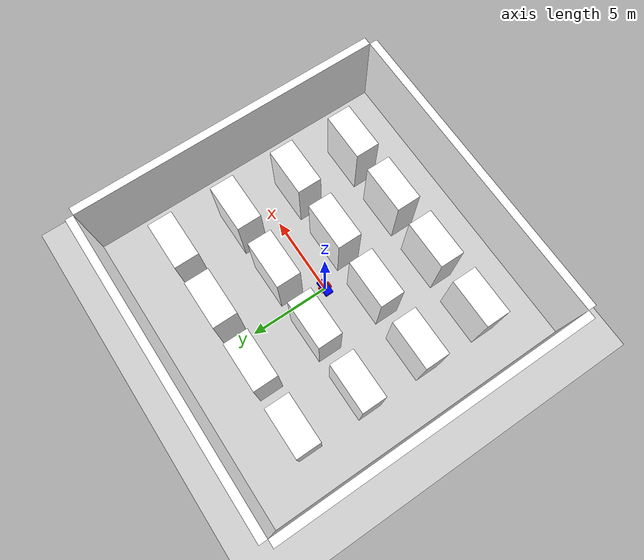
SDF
<?xml version="1.0" ?>
<sdf version="1.9">
    <world name="warehouse">
        <physics name='1ms' type='ignored'>
        <max_step_size>0.001</max_step_size>
        <real_time_factor>1</real_time_factor>
        <real_time_update_rate>700</real_time_update_rate>
        </physics>
    <plugin
      filename="ignition-gazebo-physics-system"
      name="ignition::gazebo::systems::Physics">
    </plugin>
    <plugin
      filename="ignition-gazebo-sensors-system"
      name="ignition::gazebo::systems::Sensors">
      <render_engine>ogre2</render_engine>
    </plugin>
    <plugin
      filename="ignition-gazebo-scene-broadcaster-system"
      name="ignition::gazebo::systems::SceneBroadcaster">
    </plugin>
    <plugin
      filename="ignition-gazebo-user-commands-system"
      name="ignition::gazebo::systems::UserCommands">
    </plugin>
    <plugin filename="libignition-gazebo-imu-system.so" name="ignition::gazebo::systems::Imu">
    </plugin>
    <plugin
      filename="BasicSystem"
      name="ros_gazebo::BasicSystem"> <!--Must change directories-->
    </plugin>
    <plugin
      filename="FullSystem"
      name="ros_gazebo::FullSystem">
    </plugin>

    <gravity>0 0 -9.8</gravity>
    <magnetic_field>6e-06 2.3e-05 -4.2e-05</magnetic_field>
    <atmosphere type='adiabatic'/>
    <scene>
      <ambient>0.4 0.4 0.4 1</ambient>
      <background>0.7 0.7 0.7 1</background>
      <shadows>true</shadows>
    </scene>

    <light name="sun" type="directional">
      <cast_shadows>true</cast_shadows>
      <pose>0 0 10 0 0 0</pose>
      <diffuse>0.8 0.8 0.8 1</diffuse>
      <specular>0.2 0.2 0.2 1</specular>
      <attenuation>
        <range>1000</range>
        <constant>0.9</constant>
        <linear>0.01</linear>
        <quadratic>0.001</quadratic>
      </attenuation>
      <direction>-0.5 0.1 -0.9</direction>
    </light>

    <model name='ground_plane'>
      <static>true</static>
      <link name='link'>
        <collision name='collision'>
          <geometry>
            <plane>
              <normal>0 0 1</normal>
              <size>100 100</size>
            </plane>
          </geometry>
          <surface>
            <friction>
              <ode/>
            </friction>
            <bounce/>
            <contact/>
          </surface>
        </collision>
        <visual name='visual'>
          <geometry>
            <plane>
              <normal>0 0 1</normal>
              <size>100 100</size>
            </plane>
          </geometry>
          <material>
            <ambient>0.8 0.8 0.8 1</ambient>
            <diffuse>0.8 0.8 0.8 1</diffuse>
            <specular>0.8 0.8 0.8 1</specular>
          </material>
        </visual>
        <pose>0 0 0 0 -0 0</pose>
        <inertial>
          <pose>0 0 0 0 -0 0</pose>
          <mass>1</mass>
          <inertia>
            <ixx>1</ixx>
            <ixy>0</ixy>
            <ixz>0</ixz>
            <iyy>1</iyy>
            <iyz>0</iyz>
            <izz>1</izz>
          </inertia>
        </inertial>
        <enable_wind>false</enable_wind>
      </link>
      <pose>-6 -2 0 0 -0 0</pose>
      <self_collide>false</self_collide>
    </model>
    <model name='shelf1'>
      <pose>-2 2 2 0 -0 0</pose>
      <link name='box_link'>
        <inertial>
          <inertia>
            <ixx>1.5208299999999999</ixx>
            <ixy>0</ixy>
            <ixz>0</ixz>
            <iyy>2.0833300000000001</iyy>
            <iyz>0</iyz>
            <izz>0.9375</izz>
          </inertia>
          <mass>1</mass>
          <pose>0 0 0 0 -0 0</pose>
        </inertial>
        <collision name='box_collision'>
          <geometry>
            <box>
              <size>3 1.5 4</size>
            </box>
          </geometry>
          <surface>
            <friction>
              <ode/>
            </friction>
            <bounce/>
            <contact/>
          </surface>
        </collision>
        <visual name='box_visual'>
          <geometry>
            <box>
              <size>3 1.5 4</size>
            </box>
          </geometry>
          <material>
            <ambient>1 1 1 1</ambient>
            <diffuse>1 1 1 1</diffuse>
            <specular>1 1 1 1</specular>
          </material>
        </visual>
        <pose>0 0 0 0 -0 0</pose>
        <enable_wind>false</enable_wind>
      </link>
      <static>true</static>
      <self_collide>false</self_collide>
    </model>
    <model name='shelf2'>
      <pose>2 2 2 0 0 0</pose>
      <link name='box_link'>
        <inertial>
          <inertia>
            <ixx>1.5208299999999999</ixx>
            <ixy>0</ixy>
            <ixz>0</ixz>
            <iyy>2.0833300000000001</iyy>
            <iyz>0</iyz>
            <izz>0.9375</izz>
          </inertia>
          <mass>1</mass>
          <pose>0 0 0 0 -0 0</pose>
        </inertial>
        <collision name='box_collision'>
          <geometry>
            <box>
              <size>3 1.5 4</size>
            </box>
          </geometry>
          <surface>
            <friction>
              <ode/>
            </friction>
            <bounce/>
            <contact/>
          </surface>
        </collision>
        <visual name='box_visual'>
          <geometry>
            <box>
              <size>3 1.5 4</size>
            </box>
          </geometry>
          <material>
            <ambient>1 1 1 1</ambient>
            <diffuse>1 1 1 1</diffuse>
            <specular>1 1 1 1</specular>
          </material>
        </visual>
        <pose>0 0 0 0 -0 0</pose>
        <enable_wind>false</enable_wind>
      </link>
      <static>true</static>
      <self_collide>false</self_collide>
    </model>
    <model name='shelf3'>
      <pose>6 2 2 0 -0 0</pose>
      <link name='box_link'>
        <inertial>
          <inertia>
            <ixx>1.5208299999999999</ixx>
            <ixy>0</ixy>
            <ixz>0</ixz>
            <iyy>2.0833300000000001</iyy>
            <iyz>0</iyz>
            <izz>0.9375</izz>
          </inertia>
          <mass>1</mass>
          <pose>0 0 0 0 -0 0</pose>
        </inertial>
        <collision name='box_collision'>
          <geometry>
            <box>
              <size>3 1.5 4</size>
            </box>
          </geometry>
          <surface>
            <friction>
              <ode/>
            </friction>
            <bounce/>
            <contact/>
          </surface>
        </collision>
        <visual name='box_visual'>
          <geometry>
            <box>
              <size>3 1.5 4</size>
            </box>
          </geometry>
          <material>
            <ambient>1 1 1 1</ambient>
            <diffuse>1 1 1 1</diffuse>
            <specular>1 1 1 1</specular>
          </material>
        </visual>
        <pose>0 0 0 0 -0 0</pose>
        <enable_wind>false</enable_wind>
      </link>
      <static>true</static>
      <self_collide>false</self_collide>
    </model>
    <model name='shelf4'>
      <pose>-6 2 2 0 -0 0</pose>
      <link name='box_link'>
        <inertial>
          <inertia>
            <ixx>1.5208299999999999</ixx>
            <ixy>0</ixy>
            <ixz>0</ixz>
            <iyy>2.0833300000000001</iyy>
            <iyz>0</iyz>
            <izz>0.9375</izz>
          </inertia>
          <mass>1</mass>
          <pose>0 0 0 0 -0 0</pose>
        </inertial>
        <collision name='box_collision'>
          <geometry>
            <box>
              <size>3 1.5 4</size>
            </box>
          </geometry>
          <surface>
            <friction>
              <ode/>
            </friction>
            <bounce/>
            <contact/>
          </surface>
        </collision>
        <visual name='box_visual'>
          <geometry>
            <box>
              <size>3 1.5 4</size>
            </box>
          </geometry>
          <material>
            <ambient>1 1 1 1</ambient>
            <diffuse>1 1 1 1</diffuse>
            <specular>1 1 1 1</specular>
          </material>
        </visual>
        <pose>0 0 0 0 -0 0</pose>
        <enable_wind>false</enable_wind>
      </link>
      <static>true</static>
      <self_collide>false</self_collide>
    </model>
    <model name='shelf5'>
      <pose>-6 -2 2 0 -0 0</pose>
      <link name='box_link'>
        <inertial>
          <inertia>
            <ixx>1.5208299999999999</ixx>
            <ixy>0</ixy>
            <ixz>0</ixz>
            <iyy>2.0833300000000001</iyy>
            <iyz>0</iyz>
            <izz>0.9375</izz>
          </inertia>
          <mass>1</mass>
          <pose>0 0 0 0 -0 0</pose>
        </inertial>
        <collision name='box_collision'>
          <geometry>
            <box>
              <size>3 1.5 4</size>
            </box>
          </geometry>
          <surface>
            <friction>
              <ode/>
            </friction>
            <bounce/>
            <contact/>
          </surface>
        </collision>
        <visual name='box_visual'>
          <geometry>
            <box>
              <size>3 1.5 4</size>
            </box>
          </geometry>
          <material>
            <ambient>1 1 1 1</ambient>
            <diffuse>1 1 1 1</diffuse>
            <specular>1 1 1 1</specular>
          </material>
        </visual>
        <pose>0 0 0 0 -0 0</pose>
        <enable_wind>false</enable_wind>
      </link>
      <static>true</static>
      <self_collide>false</self_collide>
    </model>
    <model name='shelf6'>
      <pose>-2 -2 2 0 -0 0</pose>
      <link name='box_link'>
        <inertial>
          <inertia>
            <ixx>1.5208299999999999</ixx>
            <ixy>0</ixy>
            <ixz>0</ixz>
            <iyy>2.0833300000000001</iyy>
            <iyz>0</iyz>
            <izz>0.9375</izz>
          </inertia>
          <mass>1</mass>
          <pose>0 0 0 0 -0 0</pose>
        </inertial>
        <collision name='box_collision'>
          <geometry>
            <box>
              <size>3 1.5 4</size>
            </box>
          </geometry>
          <surface>
            <friction>
              <ode/>
            </friction>
            <bounce/>
            <contact/>
          </surface>
        </collision>
        <visual name='box_visual'>
          <geometry>
            <box>
              <size>3 1.5 4</size>
            </box>
          </geometry>
          <material>
            <ambient>1 1 1 1</ambient>
            <diffuse>1 1 1 1</diffuse>
            <specular>1 1 1 1</specular>
          </material>
        </visual>
        <pose>0 0 0 0 -0 0</pose>
        <enable_wind>false</enable_wind>
      </link>
      <static>true</static>
      <self_collide>false</self_collide>
    </model>
    <model name='shelf7'>
      <pose>2 -2 2 0 -0 0</pose>
      <link name='box_link'>
        <inertial>
          <inertia>
            <ixx>1.5208299999999999</ixx>
            <ixy>0</ixy>
            <ixz>0</ixz>
            <iyy>2.0833300000000001</iyy>
            <iyz>0</iyz>
            <izz>0.9375</izz>
          </inertia>
          <mass>1</mass>
          <pose>0 0 0 0 -0 0</pose>
        </inertial>
        <collision name='box_collision'>
          <geometry>
            <box>
              <size>3 1.5 4</size>
            </box>
          </geometry>
          <surface>
            <friction>
              <ode/>
            </friction>
            <bounce/>
            <contact/>
          </surface>
        </collision>
        <visual name='box_visual'>
          <geometry>
            <box>
              <size>3 1.5 4</size>
            </box>
          </geometry>
          <material>
            <ambient>1 1 1 1</ambient>
            <diffuse>1 1 1 1</diffuse>
            <specular>1 1 1 1</specular>
          </material>
        </visual>
        <pose>0 0 0 0 -0 0</pose>
        <enable_wind>false</enable_wind>
      </link>
      <static>true</static>
      <self_collide>false</self_collide>
    </model>
    <model name='shelf8'>
      <pose>6 -2 2 0 -0 0</pose>
      <link name='box_link'>
        <inertial>
          <inertia>
            <ixx>1.5208299999999999</ixx>
            <ixy>0</ixy>
            <ixz>0</ixz>
            <iyy>2.0833300000000001</iyy>
            <iyz>0</iyz>
            <izz>0.9375</izz>
          </inertia>
          <mass>1</mass>
          <pose>0 0 0 0 -0 0</pose>
        </inertial>
        <collision name='box_collision'>
          <geometry>
            <box>
              <size>3 1.5 4</size>
            </box>
          </geometry>
          <surface>
            <friction>
              <ode/>
            </friction>
            <bounce/>
            <contact/>
          </surface>
        </collision>
        <visual name='box_visual'>
          <geometry>
            <box>
              <size>3 1.5 4</size>
            </box>
          </geometry>
          <material>
            <ambient>1 1 1 1</ambient>
            <diffuse>1 1 1 1</diffuse>
            <specular>1 1 1 1</specular>
          </material>
        </visual>
        <pose>0 0 0 0 -0 0</pose>
        <enable_wind>false</enable_wind>
      </link>
      <static>true</static>
      <self_collide>false</self_collide>
    </model>
    <model name='shelf9'>
      <pose>-6 -6 2 0 -0 0</pose>
      <link name='box_link'>
        <inertial>
          <inertia>
            <ixx>1.5208299999999999</ixx>
            <ixy>0</ixy>
            <ixz>0</ixz>
            <iyy>2.0833300000000001</iyy>
            <iyz>0</iyz>
            <izz>0.9375</izz>
          </inertia>
          <mass>1</mass>
          <pose>0 0 0 0 -0 0</pose>
        </inertial>
        <collision name='box_collision'>
          <geometry>
            <box>
              <size>3 1.5 4</size>
            </box>
          </geometry>
          <surface>
            <friction>
              <ode/>
            </friction>
            <bounce/>
            <contact/>
          </surface>
        </collision>
        <visual name='box_visual'>
          <geometry>
            <box>
              <size>3 1.5 4</size>
            </box>
          </geometry>
          <material>
            <ambient>1 1 1 1</ambient>
            <diffuse>1 1 1 1</diffuse>
            <specular>1 1 1 1</specular>
          </material>
        </visual>
        <pose>0 0 0 0 -0 0</pose>
        <enable_wind>false</enable_wind>
      </link>
      <static>true</static>
      <self_collide>false</self_collide>
    </model>
    <model name='shelf10'>
      <pose>-2 -6 2 0 -0 0</pose>
      <link name='box_link'>
        <inertial>
          <inertia>
            <ixx>1.5208299999999999</ixx>
            <ixy>0</ixy>
            <ixz>0</ixz>
            <iyy>2.0833300000000001</iyy>
            <iyz>0</iyz>
            <izz>0.9375</izz>
          </inertia>
          <mass>1</mass>
          <pose>0 0 0 0 -0 0</pose>
        </inertial>
        <collision name='box_collision'>
          <geometry>
            <box>
              <size>3 1.5 4</size>
            </box>
          </geometry>
          <surface>
            <friction>
              <ode/>
            </friction>
            <bounce/>
            <contact/>
          </surface>
        </collision>
        <visual name='box_visual'>
          <geometry>
            <box>
              <size>3 1.5 4</size>
            </box>
          </geometry>
          <material>
            <ambient>1 1 1 1</ambient>
            <diffuse>1 1 1 1</diffuse>
            <specular>1 1 1 1</specular>
          </material>
        </visual>
        <pose>0 0 0 0 -0 0</pose>
        <enable_wind>false</enable_wind>
      </link>
      <static>true</static>
      <self_collide>false</self_collide>
    </model>
    <model name='shelf11'>
      <pose>2 -6 2 0 -0 0</pose>
      <link name='box_link'>
        <inertial>
          <inertia>
            <ixx>1.5208299999999999</ixx>
            <ixy>0</ixy>
            <ixz>0</ixz>
            <iyy>2.0833300000000001</iyy>
            <iyz>0</iyz>
            <izz>0.9375</izz>
          </inertia>
          <mass>1</mass>
          <pose>0 0 0 0 -0 0</pose>
        </inertial>
        <collision name='box_collision'>
          <geometry>
            <box>
              <size>3 1.5 4</size>
            </box>
          </geometry>
          <surface>
            <friction>
              <ode/>
            </friction>
            <bounce/>
            <contact/>
          </surface>
        </collision>
        <visual name='box_visual'>
          <geometry>
            <box>
              <size>3 1.5 4</size>
            </box>
          </geometry>
          <material>
            <ambient>1 1 1 1</ambient>
            <diffuse>1 1 1 1</diffuse>
            <specular>1 1 1 1</specular>
          </material>
        </visual>
        <pose>0 0 0 0 -0 0</pose>
        <enable_wind>false</enable_wind>
      </link>
      <static>true</static>
      <self_collide>false</self_collide>
    </model>
    <model name='shelf12'>
      <pose>6 -6 2 0 -0 0</pose>
      <link name='box_link'>
        <inertial>
          <inertia>
            <ixx>1.5208299999999999</ixx>
            <ixy>0</ixy>
            <ixz>0</ixz>
            <iyy>2.0833300000000001</iyy>
            <iyz>0</iyz>
            <izz>0.9375</izz>
          </inertia>
          <mass>1</mass>
          <pose>0 0 0 0 -0 0</pose>
        </inertial>
        <collision name='box_collision'>
          <geometry>
            <box>
              <size>3 1.5 4</size>
            </box>
          </geometry>
          <surface>
            <friction>
              <ode/>
            </friction>
            <bounce/>
            <contact/>
          </surface>
        </collision>
        <visual name='box_visual'>
          <geometry>
            <box>
              <size>3 1.5 4</size>
            </box>
          </geometry>
          <material>
            <ambient>1 1 1 1</ambient>
            <diffuse>1 1 1 1</diffuse>
            <specular>1 1 1 1</specular>
          </material>
        </visual>
        <pose>0 0 0 0 -0 0</pose>
        <enable_wind>false</enable_wind>
      </link>
      <static>true</static>
      <self_collide>false</self_collide>
    </model>
    <model name='shelf13'>
      <pose>6 6 2 0 -0 0</pose>
      <link name='box_link'>
        <inertial>
          <inertia>
            <ixx>1.5208299999999999</ixx>
            <ixy>0</ixy>
            <ixz>0</ixz>
            <iyy>2.0833300000000001</iyy>
            <iyz>0</iyz>
            <izz>0.9375</izz>
          </inertia>
          <mass>1</mass>
          <pose>0 0 0 0 -0 0</pose>
        </inertial>
        <collision name='box_collision'>
          <geometry>
            <box>
              <size>3 1.5 4</size>
            </box>
          </geometry>
          <surface>
            <friction>
              <ode/>
            </friction>
            <bounce/>
            <contact/>
          </surface>
        </collision>
        <visual name='box_visual'>
          <geometry>
            <box>
              <size>3 1.5 4</size>
            </box>
          </geometry>
          <material>
            <ambient>1 1 1 1</ambient>
            <diffuse>1 1 1 1</diffuse>
            <specular>1 1 1 1</specular>
          </material>
        </visual>
        <pose>0 0 0 0 -0 0</pose>
        <enable_wind>false</enable_wind>
      </link>
      <static>true</static>
      <self_collide>false</self_collide>
    </model>
    <model name='shelf14'>
      <pose>2 6 2 0 -0 0</pose>
      <link name='box_link'>
        <inertial>
          <inertia>
            <ixx>1.5208299999999999</ixx>
            <ixy>0</ixy>
            <ixz>0</ixz>
            <iyy>2.0833300000000001</iyy>
            <iyz>0</iyz>
            <izz>0.9375</izz>
          </inertia>
          <mass>1</mass>
          <pose>0 0 0 0 -0 0</pose>
        </inertial>
        <collision name='box_collision'>
          <geometry>
            <box>
              <size>3 1.5 4</size>
            </box>
          </geometry>
          <surface>
            <friction>
              <ode/>
            </friction>
            <bounce/>
            <contact/>
          </surface>
        </collision>
        <visual name='box_visual'>
          <geometry>
            <box>
              <size>3 1.5 4</size>
            </box>
          </geometry>
          <material>
            <ambient>1 1 1 1</ambient>
            <diffuse>1 1 1 1</diffuse>
            <specular>1 1 1 1</specular>
          </material>
        </visual>
        <pose>0 0 0 0 -0 0</pose>
        <enable_wind>false</enable_wind>
      </link>
      <static>true</static>
      <self_collide>false</self_collide>
    </model>
    <model name='shelf15'>
      <pose>-2 6 2 0 -0 0</pose>
      <link name='box_link'>
        <inertial>
          <inertia>
            <ixx>1.5208299999999999</ixx>
            <ixy>0</ixy>
            <ixz>0</ixz>
            <iyy>2.0833300000000001</iyy>
            <iyz>0</iyz>
            <izz>0.9375</izz>
          </inertia>
          <mass>1</mass>
          <pose>0 0 0 0 -0 0</pose>
        </inertial>
        <collision name='box_collision'>
          <geometry>
            <box>
              <size>3 1.5 4</size>
            </box>
          </geometry>
          <surface>
            <friction>
              <ode/>
            </friction>
            <bounce/>
            <contact/>
          </surface>
        </collision>
        <visual name='box_visual'>
          <geometry>
            <box>
              <size>3 1.5 4</size>
            </box>
          </geometry>
          <material>
            <ambient>1 1 1 1</ambient>
            <diffuse>1 1 1 1</diffuse>
            <specular>1 1 1 1</specular>
          </material>
        </visual>
        <pose>0 0 0 0 -0 0</pose>
        <enable_wind>false</enable_wind>
      </link>
      <static>true</static>
      <self_collide>false</self_collide>
    </model>
    <model name='shelf16'>
      <pose>-6 6 2 0 -0 0</pose>
      <link name='box_link'>
        <inertial>
          <inertia>
            <ixx>1.5208299999999999</ixx>
            <ixy>0</ixy>
            <ixz>0</ixz>
            <iyy>2.0833300000000001</iyy>
            <iyz>0</iyz>
            <izz>0.9375</izz>
          </inertia>
          <mass>1</mass>
          <pose>0 0 0 0 -0 0</pose>
        </inertial>
        <collision name='box_collision'>
          <geometry>
            <box>
              <size>3 1.5 4</size>
            </box>
          </geometry>
          <surface>
            <friction>
              <ode/>
            </friction>
            <bounce/>
            <contact/>
          </surface>
        </collision>
        <visual name='box_visual'>
          <geometry>
            <box>
              <size>3 1.5 4</size>
            </box>
          </geometry>
          <material>
            <ambient>1 1 1 1</ambient>
            <diffuse>1 1 1 1</diffuse>
            <specular>1 1 1 1</specular>
          </material>
        </visual>
        <pose>0 0 0 0 -0 0</pose>
        <enable_wind>false</enable_wind>
      </link>
      <static>true</static>
      <self_collide>false</self_collide>
    </model>
    <model name='Boundary1'>
      <pose>10 0 2.5 0 -0 0</pose>
      <link name='box_link'>
        <inertial>
          <inertia>
            <ixx>0.16666</ixx>
            <ixy>0</ixy>
            <ixz>0</ixz>
            <iyy>0.16666</iyy>
            <iyz>0</iyz>
            <izz>0.16666</izz>
          </inertia>
          <mass>1</mass>
          <pose>0 0 0 0 -0 0</pose>
        </inertial>
        <collision name='box_collision'>
          <geometry>
            <box>
              <size>0.5 19.5 5</size>
            </box>
          </geometry>
          <surface>
            <friction>
              <ode/>
            </friction>
            <bounce/>
            <contact/>
          </surface>
        </collision>
        <visual name='box_visual'>
          <geometry>
            <box>
              <size>0.5 19.5 5</size>
            </box>
          </geometry>
          <material>
            <ambient>1 1 1 1</ambient>
            <diffuse>1 1 1 1</diffuse>
            <specular>1 1 1 1</specular>
          </material>
        </visual>
        <pose>0 0 0 0 -0 0</pose>
        <enable_wind>false</enable_wind>
      </link>
      <static>true</static>
      <self_collide>false</self_collide>
    </model>
    <model name='Boundary2'>
      <pose>-10 0 2.5 0 -0 0</pose>
      <link name='box_link'>
        <inertial>
          <inertia>
            <ixx>0.16666</ixx>
            <ixy>0</ixy>
            <ixz>0</ixz>
            <iyy>0.16666</iyy>
            <iyz>0</iyz>
            <izz>0.16666</izz>
          </inertia>
          <mass>1</mass>
          <pose>0 0 0 0 -0 0</pose>
        </inertial>
        <collision name='box_collision'>
          <geometry>
            <box>
              <size>0.5 19.5 5</size>
            </box>
          </geometry>
          <surface>
            <friction>
              <ode/>
            </friction>
            <bounce/>
            <contact/>
          </surface>
        </collision>
        <visual name='box_visual'>
          <geometry>
            <box>
              <size>0.5 19.5 5</size>
            </box>
          </geometry>
          <material>
            <ambient>1 1 1 1</ambient>
            <diffuse>1 1 1 1</diffuse>
            <specular>1 1 1 1</specular>
          </material>
        </visual>
        <pose>0 0 0 0 -0 0</pose>
        <enable_wind>false</enable_wind>
      </link>
      <static>true</static>
      <self_collide>false</self_collide>
    </model>
    <model name='Boundary3'>
      <pose>0 10 2.5 0 -0 0</pose>
      <link name='box_link'>
        <inertial>
          <inertia>
            <ixx>0.16666</ixx>
            <ixy>0</ixy>
            <ixz>0</ixz>
            <iyy>0.16666</iyy>
            <iyz>0</iyz>
            <izz>0.16666</izz>
          </inertia>
          <mass>1</mass>
          <pose>0 0 0 0 -0 0</pose>
        </inertial>
        <collision name='box_collision'>
          <geometry>
            <box>
              <size>19.5 0.5 5</size>
            </box>
          </geometry>
          <surface>
            <friction>
              <ode/>
            </friction>
            <bounce/>
            <contact/>
          </surface>
        </collision>
        <visual name='box_visual'>
          <geometry>
            <box>
              <size>19.5 0.5 5</size>
            </box>
          </geometry>
          <material>
            <ambient>1 1 1 1</ambient>
            <diffuse>1 1 1 1</diffuse>
            <specular>1 1 1 1</specular>
          </material>
        </visual>
        <pose>0 0 0 0 -0 0</pose>
        <enable_wind>false</enable_wind>
      </link>
      <static>true</static>
      <self_collide>false</self_collide>
    </model>
    <model name='Boundary4'>
      <pose>0 -10 2.5 0 -0 0</pose>
      <link name='box_link'>
        <inertial>
          <inertia>
            <ixx>0.16666</ixx>
            <ixy>0</ixy>
            <ixz>0</ixz>
            <iyy>0.16666</iyy>
            <iyz>0</iyz>
            <izz>0.16666</izz>
          </inertia>
          <mass>1</mass>
          <pose>0 0 0 0 -0 0</pose>
        </inertial>
        <collision name='box_collision'>
          <geometry>
            <box>
              <size>19.5 0.5 5</size>
            </box>
          </geometry>
          <surface>
            <friction>
              <ode/>
            </friction>
            <bounce/>
            <contact/>
          </surface>
        </collision>
        <visual name='box_visual'>
          <geometry>
            <box>
              <size>19.5 0.5 5</size>
            </box>
          </geometry>
          <material>
            <ambient>1 1 1 1</ambient>
            <diffuse>1 1 1 1</diffuse>
            <specular>1 1 1 1</specular>
          </material>
        </visual>
        <pose>0 0 0 0 -0 0</pose>
        <enable_wind>false</enable_wind>
      </link>
      <static>true</static>
      <self_collide>false</self_collide>
    </model>
    <model name="Crawler">
      <self_collide>true</self_collide>
      <pose>0 0 0 0 0 0</pose>
      <include merge="true">
        <uri>package://robot_description/models/Crawler</uri>
      </include>
    </model>
  </world>
</sdf>

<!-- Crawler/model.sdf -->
<sdf version="1.9">
    <model name='Crawler' canonical_link='base_link'>

      <frame name="caster_frame1" attached_to='base_link'>
        <pose>0.4 0 -0.1 0 0 0</pose>
      </frame>
      <frame name="caster_frame2" attached_to='base_link'>
        <pose>-0.4 0 -0.1 0 0 0</pose>
      </frame>

      <link name='base_link'>
        <pose relative_to='__model__'>0 0 0.2 0 0 0</pose>
        <inertial>
          <mass>2</mass>
          <inertia>
            <ixx>0.0520833</ixx>
            <ixy>0</ixy>
            <ixz>0</ixz>
            <iyy>0.1760417</iyy>
            <iyz>0</iyz>
            <izz>0.2083333</izz>
          </inertia>
        </inertial>
        <visual name='base_link_visual'>
          <geometry>
            <box>
              <size>1.0 0.5 0.25</size>
            </box>
          </geometry>
          <material>
            <ambient>0.0 0.0 1.0 1</ambient>
            <diffuse>0.0 0.0 1.0 1</diffuse>
            <specular>0.0 0.0 1.0 1</specular>
          </material>
        </visual>
        <collision name='collision'>
          <geometry>
            <box>
              <size>1.0 0.5 0.25</size>  <!-- Halved size -->
            </box>
          </geometry>
        </collision>
        <sensor name="IMU" type="imu">
          <always_on>1</always_on>
          <update_rate>30</update_rate>
          <visualize>true</visualize>
          <topic>imu</topic>
          <imu>
            <angular_velocity>
              <x>
                <noise type='gaussian'>
                  <mean>0</mean>
                  <stddev>0.001</stddev>
                </noise>
              </x>
              <y>
                <noise type='gaussian'>
                  <mean>0</mean>
                  <stddev>0.001</stddev>
                </noise>
              </y>
              <z>
                <noise type='none' />
              </z>
            </angular_velocity>
            <linear_acceleration>
              <x>
                <noise type='gaussian'>
                  <mean>0</mean>
                  <stddev>0.0005</stddev>
                </noise>
              </x>
              <y>
                <noise type='gaussian'>
                  <mean>0</mean>
                  <stddev>0.0005</stddev>
                </noise>
              </y>
              <z>
                <noise type='none' />
              </z>
            </linear_acceleration>
            <enable_orientation>true</enable_orientation>
          </imu>
        </sensor>

        <sensor name='LinSense' type='gpu_lidar'>
          <pose relative_to='base_link'>0 0 0.25 0 0 0</pose>
          <topic>scan_lid</topic>
          <ray>
            <scan>
              <horizontal>
                <samples>360</samples>
                <resolution>1</resolution>
                <min_angle>-3.14159</min_angle>
                <max_angle>3.14159</max_angle>
              </horizontal>
            </scan>
            <range>
              <min>0.1</min>
              <max>10.0</max>
            </range>
          </ray>
          <visualize>true</visualize>
          <update_rate>30</update_rate>
          <always_on>1</always_on>
          <noise>
            <type>gaussian_noise</type>
            <mean>0</mean>
            <stddev>0.01</stddev>
          </noise>
        </sensor>

      </link>
       <link name='base_footprint'>
        <pose relative_to='base_link'>0 0 -0.2 0 0 0</pose>
      </link>

      <link name='left_wheel'>
        <pose relative_to='base_link'>0 0.3 0 -1.5707 0 0</pose>
        <inertial>
          <mass>2</mass>
          <inertia>
            <ixx>0.01667</ixx>
            <ixy>0</ixy>
            <ixz>0</ixz>
            <iyy>0.01667</iyy>
            <iyz>0</iyz>
            <izz>0.004</izz>
          </inertia>
        </inertial>

        <visual name='visual'>
          <geometry>
            <cylinder>
              <radius>0.2</radius>
              <length>0.1</length>
            </cylinder>
          </geometry>
          <material>
            <ambient>1.0 0.0 0.0 1</ambient>
            <diffuse>1.0 0.0 0.0 1</diffuse>
            <specular>1.0 0.0 0.0 1</specular>
          </material>
        </visual>

        <collision name='collision'>
          <geometry>
            <cylinder>
              <radius>0.2</radius>
              <length>0.1</length>
            </cylinder>
          </geometry>
        </collision>
      </link>

      <link name='right_wheel'>
        <pose relative_to="base_link">0 -0.3 0 -1.5707 0 0</pose>
        <inertial>
        <mass>2</mass>
        <inertia>
          <ixx>0.01667</ixx>
          <ixy>0</ixy>
          <ixz>0</ixz>
          <iyy>0.01667</iyy>
          <iyz>0</iyz>
          <izz>0.004</izz>
        </inertia>
      </inertial>

        <visual name='visual'>
          <geometry>
            <cylinder>
              <radius>0.2</radius>
              <length>0.1</length>
            </cylinder>
          </geometry>
          <material>
            <ambient>1.0 0.0 0.0 1</ambient>
            <diffuse>1.0 0.0 0.0 1</diffuse>
            <specular>1.0 0.0 0.0 1</specular>
          </material>
        </visual>

        <collision name='collision'>
          <geometry>
            <cylinder>
              <radius>0.2</radius>
              <length>0.1</length>
            </cylinder>
          </geometry>
        </collision>
      </link>

      <link name='caster1'>
        <pose relative_to='caster_frame1'/>
        <inertial>
          <mass>2</mass>
          <inertia>
            <ixx>0.004</ixx>
            <ixy>0</ixy>
            <ixz>0</ixz>
            <iyy>0.004</iyy>
            <iyz>0</iyz>
            <izz>0.004</izz>
          </inertia>
        </inertial>

        <visual name='visual'>
            <geometry>
                <sphere>
                    <radius>0.1</radius>
                </sphere>
            </geometry>
            <material>
                <ambient>0.0 1 0.0 1</ambient>
                <diffuse>0.0 1 0.0 1</diffuse>
                <specular>0.0 1 0.0 1</specular>
            </material>
        </visual>

        <collision name='collision'>
            <geometry>
                <sphere>
                    <radius>0.1</radius>
                </sphere>
            </geometry>
        </collision>
      </link>

      <link name='caster2'>
        <pose relative_to='caster_frame2'/>
        <inertial>
          <mass>2</mass>
          <inertia>
            <ixx>0.004</ixx>
            <ixy>0</ixy>
            <ixz>0</ixz>
            <iyy>0.004</iyy>
            <iyz>0</iyz>
            <izz>0.004</izz>
          </inertia>
        </inertial>

        <visual name='visual'>
            <geometry>
                <sphere>
                    <radius>0.1</radius>
                </sphere>
            </geometry>
            <material>
                <ambient>0.0 1 0.0 1</ambient>
                <diffuse>0.0 1 0.0 1</diffuse>
                <specular>0.0 1 0.0 1</specular>
            </material>
        </visual>

        <collision name='collision'>
            <geometry>
                <sphere>
                    <radius>0.1</radius>
                </sphere>
            </geometry>
        </collision>
      </link>

      <joint name='left_wheel_joint' type='revolute'>
        <parent>base_link</parent>
        <child>left_wheel</child>
        <axis>
            <xyz expressed_in='__model__'>0 1 0</xyz>
            <limit>
                <lower>-1.79769e+308</lower>
                <upper>1.79769e+308</upper>
            </limit>
        </axis>
      </joint>

      <joint name='right_wheel_joint' type='revolute'>
        <parent>base_link</parent>
        <child>right_wheel</child>
        <axis>
            <xyz expressed_in='__model__'>0 1 0</xyz>
            <limit>
                <lower>-1.79769e+308</lower>
                <upper>1.79769e+308</upper>
            </limit>
        </axis>
      </joint>

      <joint name='caster_wheel1' type='ball'>
        <parent>base_link</parent>
        <child>caster1</child>
      </joint>

      <joint name='caster_wheel2' type='ball'>
        <parent>base_link</parent>
        <child>caster2</child>
      </joint>

      <joint name='base_footprint_joint' type='fixed'>
        <parent>base_link</parent>
        <child>base_footprint</child>
      </joint>

      <plugin
        filename="libignition-gazebo-diff-drive-system.so"
        name="ignition::gazebo::systems::DiffDrive">
        <left_joint>left_wheel_joint</left_joint>
        <right_joint>right_wheel_joint</right_joint>
        <wheel_separation>0.6</wheel_separation>
        <wheel_radius>0.2</wheel_radius>
        <topic>cmd_vel</topic>
        <robotBaseFrame>base_link</robotBaseFrame>
        <odometryFrame>odom</odometryFrame>
        <odometrySource>1</odometrySource>
      </plugin>

      <plugin
          filename="ignition-gazebo-odometry-publisher-system"
          name="ignition::gazebo::systems::OdometryPublisher">
          <odom_frame>odom</odom_frame>
          <robot_base_frame>base_link</robot_base_frame>
          <odom_topic>odom</odom_topic>
          <odom_publish_frequency>100</odom_publish_frequency>
          <odom_covariance_topic>odom_cv</odom_covariance_topic>
          <gaussian_noise>0.02</gaussian_noise>
      </plugin>

      <plugin
        filename="ignition-gazebo-joint-state-publisher-system"
        name="ignition::gazebo::systems::JointStatePublisher">
         <publish_link_pose>true</publish_link_pose>
        <use_pose_vector_msg>true</use_pose_vector_msg>
      </plugin>

      <plugin filename="libignition-gazebo-triggered-publisher-system.so"
        name="ignition::gazebo::systems::TriggeredPublisher">
        <input type="ignition.msgs.Int32" topic="/keyboard/keypress">
        <match field="data">16777235</match>
        </input>
        <output type="ignition.msgs.Twist" topic="/cmd_vel">
        linear: {x: 1.0}, angular: {z: 0.0}
        </output>
      </plugin>
      <plugin filename="libignition-gazebo-triggered-publisher-system.so"
        name="ignition::gazebo::systems::TriggeredPublisher">
        <input type="ignition.msgs.Int32" topic="/keyboard/keypress">
        <match field="data">16777237</match>
        </input>
        <output type="ignition.msgs.Twist" topic="/cmd_vel">
        linear: {x: -1.0}, angular: {z: 0.0}
        </output>
      </plugin>
      <plugin filename="libignition-gazebo-triggered-publisher-system.so"
        name="ignition::gazebo::systems::TriggeredPublisher">
        <input type="ignition.msgs.Int32" topic="/keyboard/keypress">
        <match field="data">16777234</match>
        </input>
        <output type="ignition.msgs.Twist" topic="/cmd_vel">
        linear: {x: 0.0}, angular: {z: 1.0}
        </output>
      </plugin>
      <plugin filename="libignition-gazebo-triggered-publisher-system.so"
        name="ignition::gazebo::systems::TriggeredPublisher">
        <input type="ignition.msgs.Int32" topic="/keyboard/keypress">
        <match field="data">16777236</match>
        </input>
        <output type="ignition.msgs.Twist" topic="/cmd_vel">
        linear: {x: 0.0}, angular: {z: -1.0}
        </output>
      </plugin>
      <plugin filename="libignition-gazebo-triggered-publisher-system.so"
        name="ignition::gazebo::systems::TriggeredPublisher">
        <input type="ignition.msgs.Int32" topic="/keyboard/keypress">
        <match field="data">88</match>
        </input>
        <output type="ignition.msgs.Twist" topic="/cmd_vel">
        linear: {x: 0.0}, angular: {z: 0.0}
        </output>
      </plugin>
    </model>
</sdf>
